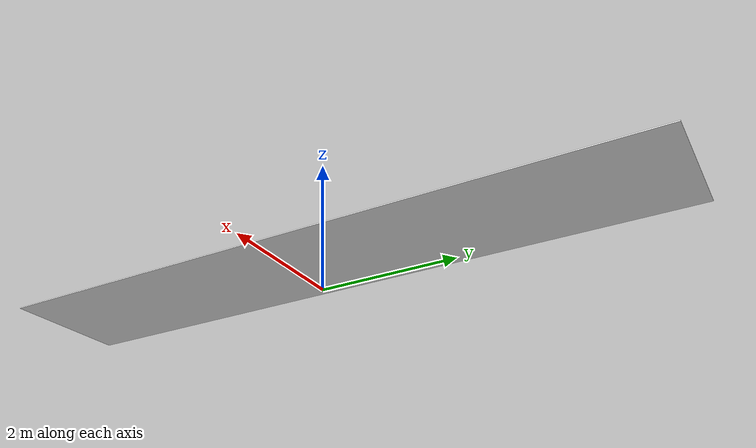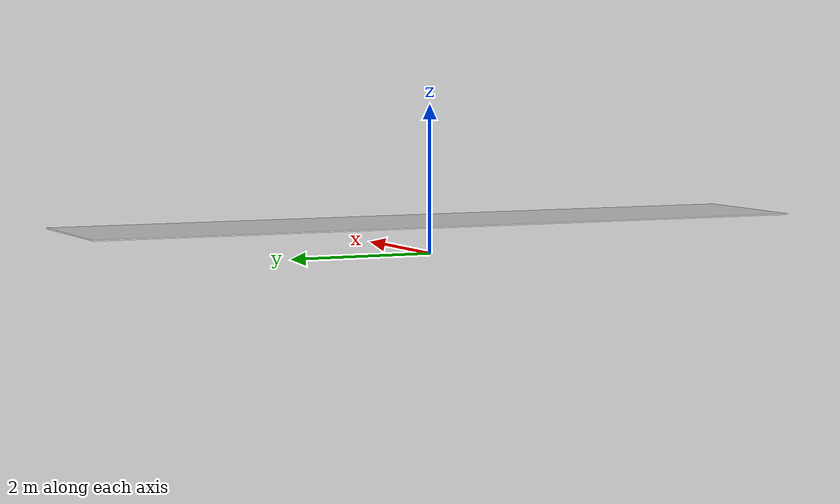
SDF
<?xml version="1.0"?>
<sdf version="1.7">

  <model name="wall_plane">
  <link name="wall_plane_link">
    <inertial>
      <mass>18.70</mass>
      <pose>0.0 0.0 0.445 0 0 0</pose>
      <inertia>
          <ixx>0.619</ixx>
          <ixy>0</ixy>
          <ixz>0</ixz>
          <iyy>0.374</iyy>
          <iyz>0</iyz>
          <izz>0.99</izz>
      </inertia>
    </inertial>
    <visual name="bottom">
      <pose>0.0 0.0 0.445 0 0 0</pose>
      <geometry>
        <box>
          <size>2.0 10.0 0.015</size>.
        </box>
      </geometry>
      <material>
        <diffuse>0.9 0.9 0.9 1.0</diffuse>
      </material>
    </visual>
    <collision name="bottom">
      <pose>0.0 0.0 0.445 0 0 0</pose>
      <geometry>
        <box>
          <size>2.0 10.0 0.015</size>
        </box>
      </geometry>
      <drake:proximity_properties>
        <drake:compliant_hydroelastic/>
        <drake:hydroelastic_modulus>1.0e6</drake:hydroelastic_modulus>
      </drake:proximity_properties>
    </collision>
  </link>
  <frame name="wall_center">
    <pose relative_to="wall_plane_link">0 0 0.047 0 0 0</pose>
  </frame>
  <frame name="wall_bottomcenter">
    <pose relative_to="wall_plane_link">1 0 -0.047 0 0 0</pose>
  </frame>
</model>

</sdf>
